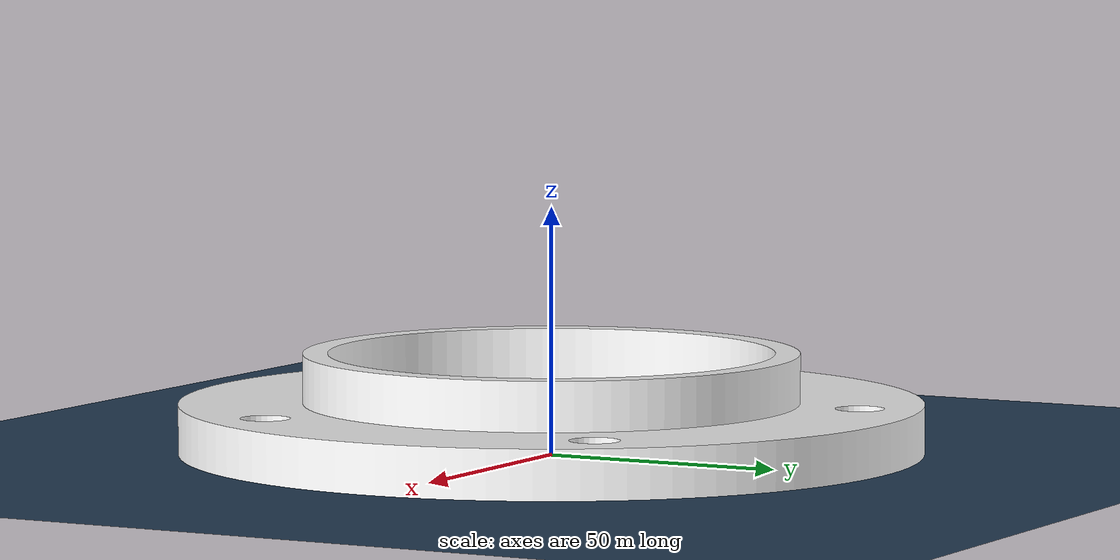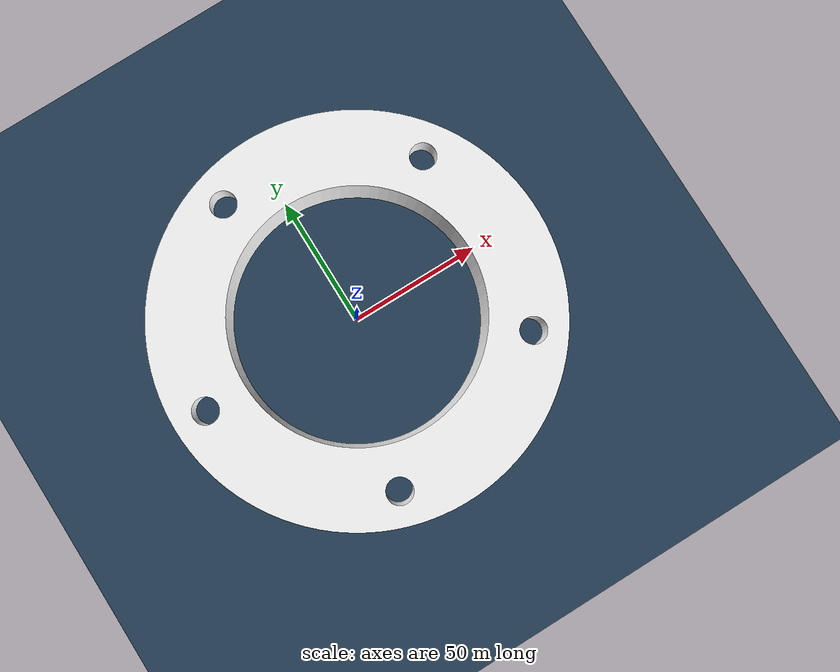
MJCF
<mujoco model="chiwu_scene">
  <include file="cw1.xml"/>
  <visual>
	  <headlight diffuse="0.6 0.6 0.6"  ambient="0.3 0.3 0.3" specular="0 0 0"/>
	  <rgba haze="0.15 0.25 0.35 1"/>
  </visual>
  <asset>
	  <texture type="skybox" builtin="gradient" rgb1="0.3 0.5 0.7" rgb2="0 0 0" width="512"        height="3072"/>
	  <texture type="2d" name="groundplane" builtin="checker" mark="edge" rgb1="0.2 0.3 0.4"        rgb2="0.1 0.2 0.3" markrgb="0.8 0.8 0.8" width="300" height="300"/>
	  <material name="groundplane" texture="groundplane" texuniform="true" texrepeat="1 1"        reflectance="0.2"/>
  </asset>
  <worldbody>
	  <light pos="0 0 1.5" dir="0 0 -1" directional="true"/>
	  <geom name="floor" size="0 0 0.25" type="plane" material="groundplane" conaffinity="15"/>
  </worldbody>
</mujoco>

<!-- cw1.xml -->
<mujoco model="cw2(edit inertia)">
    <compiler angle="radian" meshdir="../meshes/" />
    <size njmax="500" nconmax="100" />
    <default>
        <joint limited="true" damping="0.001" armature="0.01" frictionloss="0.1"/>
        <motor ctrllimited="true"/>
        <geom condim="4" contype="1" conaffinity="15" solref="0.001 2" friction="0.9 0.2 0.2"/>
        <equality solref="0.001 2"/>
    </default>
    <asset>
        <mesh name="base_link" file="base_link.STL" />
        <mesh name="r_hip_pitch_link" file="r_hip_pitch_link.STL" />
        <mesh name="r_hip_roll_link" file="r_hip_roll_link.STL" />
        <mesh name="r_knee_pitch_link" file="r_knee_pitch_link.STL" />
        <mesh name="l_hip_pitch_link" file="l_hip_pitch_link.STL" />
        <mesh name="l_hip_roll_link" file="l_hip_roll_link.STL" />
        <mesh name="l_knee_pitch_link" file="l_knee_pitch_link.STL" />
    </asset>
    <worldbody>
        <body name="base_link" pos="0 0 0.7">
            <site name="imu" size="0.01" pos="0.0 0 0.0" quat="1 0 0 0" />
            <inertial pos="-0.010262 5.2244e-05 -0.0059008" quat="0.999866 0.000239769 0.016394 -0.000309359" mass="2.40698" diaginertia="0.0145597 0.0127086 0.0046103" />
            <joint name="floating_base_joint" type="free" limited="false" />
            <geom type="mesh" contype="0" conaffinity="0" group="1" rgba="1 1 1 1" mesh="base_link" />
            <geom type="mesh" rgba="1 1 1 1" mesh="base_link" />
            <body name="r_hip_pitch_link" pos="-0.010755 -0.022431 -0.085175">
                <inertial pos="-0.0024838 -0.073386 -7.2332e-05" quat="0.707107 0.707107 0 0" mass="0.384498" diaginertia="0.000324 0.000236 0.000192" />
                <joint name="r_hip_pitch_joint" pos="0 0 0" axis="0 1 0" limited="true" range="-1 1" />
                <geom type="mesh" contype="0" conaffinity="0" group="1" rgba="1 1 1 1" mesh="r_hip_pitch_link" />
                <geom type="mesh" rgba="1 1 1 1" mesh="r_hip_pitch_link" />
                <body name="r_hip_roll_link" pos="0.000365066 -0.0755015 -6.48896e-05">
                    <inertial pos="-0.00060502 0.0014424 -0.24367" quat="0.707107 0 0 0.707107" mass="0.620368" diaginertia="0.006366 0.00629 0.000344" />
                    <joint name="r_hip_roll_joint" pos="0 0 0" axis="-1 0 0" limited="true" range="-1 1" />
                    <geom type="mesh" contype="0" conaffinity="0" group="1" rgba="1 1 1 1" mesh="r_hip_roll_link" />
                    <body name="r_knee_pitch_link" pos="0.00036888 0 -0.304909">
                        <inertial pos="1.9035e-06 0.0019029 -0.14564" mass="0.271066" diaginertia="0.002117 0.002072 0.00012" />
                        <joint name="r_knee_pitch_joint" pos="0 0 0" axis="0 1 0" limited="true" range="-1 1" />
                        <geom type="mesh" contype="0" conaffinity="0" group="1" rgba="1 1 1 1" mesh="r_knee_pitch_link" />
                        <geom type="mesh" rgba="1 1 1 1" mesh="r_knee_pitch_link" />
                    </body>
                </body>
            </body>
            <body name="l_hip_pitch_link" pos="-0.0107552 0.0225656 -0.0851757">
                <inertial pos="-0.0024838 0.073386 -7.2332e-05" quat="0.707107 0.707107 0 0" mass="0.384498" diaginertia="0.000324 0.000236 0.000192" />
                <joint name="l_hip_pitch_joint" pos="0 0 0" axis="0 1 0" limited="true" range="-1 1" />
                <geom type="mesh" contype="0" conaffinity="0" group="1" rgba="1 1 1 1" mesh="l_hip_pitch_link" />
                <geom type="mesh" rgba="1 1 1 1" mesh="l_hip_pitch_link" />
                <body name="l_hip_roll_link" pos="0.00036517 0.0755015 -6.43024e-05">
                    <inertial pos="-0.0010784 -0.0032097 -0.24367" quat="0.707107 0 0 0.707107" mass="0.620368" diaginertia="0.006365 0.006291 0.000344" />
                    <joint name="l_hip_roll_joint" pos="0 0 0" axis="-1 0 0" limited="true" range="-1 1" />
                    <geom type="mesh" contype="0" conaffinity="0" group="1" rgba="1 1 1 1" mesh="l_hip_roll_link" />
                    <body name="l_knee_pitch_link" pos="-0.000365179 -0.00194284 -0.304906">
                        <inertial pos="-1.9035e-06 -0.0018987 -0.14564" mass="0.271066" diaginertia="0.002117 0.002072 0.00012" />
                        <joint name="l_knee_pitch_joint" pos="0 0 0" axis="0 1 0" limited="true" range="-1 1" />
                        <geom type="mesh" contype="0" conaffinity="0" group="1" rgba="1 1 1 1" mesh="l_knee_pitch_link" />
                        <geom type="mesh" rgba="1 1 1 1" mesh="l_knee_pitch_link" />
                    </body>
                </body>
            </body>
        </body>
    </worldbody>
    <actuator>
        <motor name="r_hip_pitch_joint" joint="r_hip_pitch_joint" gear="1" ctrllimited="true" ctrlrange="-12 12" />
        <motor name="r_hip_roll_joint" joint="r_hip_roll_joint" gear="1" ctrllimited="true" ctrlrange="-12 12" />
        <motor name="r_knee_pitch_joint" joint="r_knee_pitch_joint" gear="1" ctrllimited="true" ctrlrange="-12 12" />
        <motor name="l_hip_pitch_joint" joint="l_hip_pitch_joint" gear="1" ctrllimited="true" ctrlrange="-12 12" />
        <motor name="l_hip_roll_joint" joint="l_hip_roll_joint" gear="1" ctrllimited="true" ctrlrange="-12 12" />
        <motor name="l_knee_pitch_joint" joint="l_knee_pitch_joint" gear="1" ctrllimited="true" ctrlrange="-12 12" />
    </actuator>
    <sensor>
        <framequat name="orientation" objtype="site" noise="0.001" objname="imu"/>
        <framepos name="position" objtype="site" noise="0.001" objname="imu"/>
        <gyro name="angular-velocity" site="imu" noise="0.005" cutoff="34.9"/>
        <velocimeter name="linear-velocity" site="imu" noise="0.001" cutoff="30"/>
        <accelerometer name="linear-acceleration" site="imu" noise="0.005" cutoff="157"/>
        <magnetometer name="magnetometer" site="imu"/>
    </sensor>
</mujoco>
